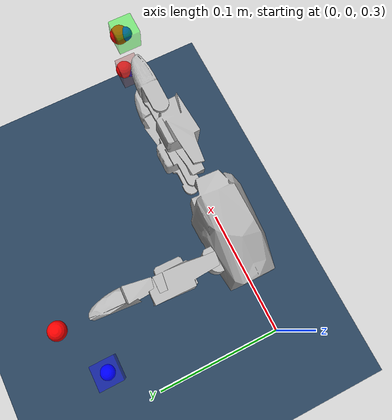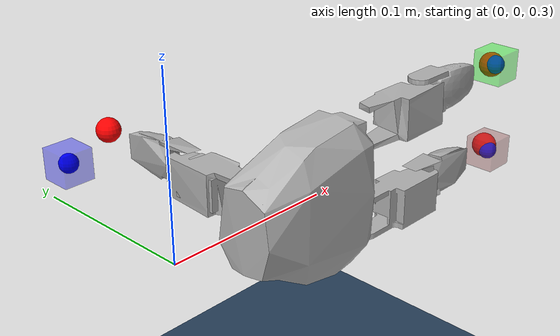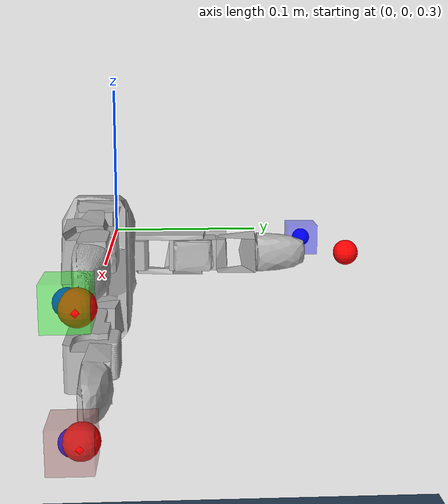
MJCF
<mujoco model="right dex3 hand scene">
  <include file="right_dex3.xml"/>
  <option gravity="0 0 0" />

  <statistic center="0 0 0.5" extent="2.0"/>

  <visual>
    <headlight diffuse="0.6 0.6 0.6" ambient="0.3 0.3 0.3" specular="0 0 0"/>
    <rgba haze="0.15 0.25 0.35 1"/>
    <global azimuth="-130" elevation="-20"/>
  </visual>

  <asset>
    <texture type="skybox" builtin="gradient" rgb1="0.3 0.5 0.7" rgb2="0 0 0" width="512" height="3072"/>
    <texture type="2d" name="groundplane" builtin="checker" mark="edge" rgb1="0.2 0.3 0.4" rgb2="0.1 0.2 0.3"
      markrgb="0.8 0.8 0.8" width="300" height="300"/>
    <material name="groundplane" texture="groundplane" texuniform="true" texrepeat="5 5" reflectance="0.2"/>
  </asset>

  <worldbody>
    <light pos="0 0 1.5" dir="0 0 -1" directional="true"/>
    <geom name="floor" size="0 0 0.05" type="plane" material="groundplane"/>

    <!-- multi-target -->
    <body name="rm" pos="0.27 0 0.27" quat="1 0 0 0" mocap="true">
      <geom type="box" size=".01 .01 .01" contype="0" conaffinity="0" rgba=".6 .3 .3 .4" />
      <site type="sphere" name="rm_site" size="0.006" rgba="0 0 1 1" group="1" />
    </body>
    <body name="ri" pos="0.27 0 0.33" quat="1 0 0 0" mocap="true">
      <geom type="box" size=".01 .01 .01" contype="0" conaffinity="0" rgba="0 1 0 .4" />
      <site type="sphere" name="ri_site" size="0.006" rgba="0 0 1 1" group="1" />
    </body>
    <body name="rt" pos="0.03 0.13 0.3" quat="1 0 0 0" mocap="true">
      <geom type="box" size=".01 .01 .01" contype="0" conaffinity="0" rgba="0 0 1 .4" />
      <site type="sphere" name="rt_site" size="0.006" rgba="0 0 1 1" group="1" />
    </body>
  </worldbody>
</mujoco>

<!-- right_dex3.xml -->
<mujoco model="right_dex3_hand">
  <compiler angle="radian" meshdir="./meshes/"/>

  <asset>
    <mesh name="right_hand_palm_link" file="right_hand_palm_link.STL"/>
    <mesh name="right_hand_thumb_0_link" file="right_hand_thumb_0_link.STL"/>
    <mesh name="right_hand_thumb_1_link" file="right_hand_thumb_1_link.STL"/>
    <mesh name="right_hand_thumb_2_link" file="right_hand_thumb_2_link.STL"/>
    <mesh name="right_hand_middle_0_link" file="right_hand_middle_0_link.STL"/>
    <mesh name="right_hand_middle_1_link" file="right_hand_middle_1_link.STL"/>
    <mesh name="right_hand_index_0_link" file="right_hand_index_0_link.STL"/>
    <mesh name="right_hand_index_1_link" file="right_hand_index_1_link.STL"/>
  </asset>

  <default>
    <default class="hand_motor">
      <joint damping="0.01" armature="0.01" frictionloss="0.1"/>
    </default>
  </default>

  <worldbody>
    <body name="hand_base" pos="0 0 0.3">
      <geom pos="0.0415 -0.003 0" quat="1 0 0 0" type="mesh" contype="0"
        conaffinity="0" group="1" density="0" rgba="0.7 0.7 0.7 1"
        mesh="right_hand_palm_link" />
      <geom pos="0.0415 -0.003 0" quat="1 0 0 0" type="mesh"
        rgba="0.7 0.7 0.7 1" mesh="right_hand_palm_link" />
      <body name="right_hand_thumb_0_link" pos="0.0695 -0.003 0">
        <inertial pos="-0.000354413 0.0132989 -0.000412362"
          quat="0.424842 0.567321 -0.591021 0.385163" mass="0.0803302"
          diaginertia="1.39245e-05 1.32309e-05 1.19138e-05" />
        <joint name="right_hand_thumb_0_joint" pos="0 0 0" axis="0 1 0"
          range="-1.0472 1.0472" actuatorfrcrange="-2.45 2.45" class="hand_motor" />
        <geom type="mesh" contype="0" conaffinity="0" group="1" density="0"
          rgba="0.7 0.7 0.7 1" mesh="right_hand_thumb_0_link" />
        <geom type="mesh" rgba="0.7 0.7 0.7 1" mesh="right_hand_thumb_0_link" />
        <body name="right_hand_thumb_1_link" pos="0 0.0246 0">
          <inertial pos="0.0036206 0.040444 0.000297711"
            quat="0.696371 0.699653 -0.125539 0.0989605" mass="0.0561963"
            diaginertia="1.23865e-05 1.2092e-05 5.00561e-06" />
          <joint name="right_hand_thumb_1_joint" pos="0 0 0" axis="0 0 1"
            range="-1.0472 0.724312" actuatorfrcrange="-0.7 0.7" class="hand_motor" />
          <geom type="mesh" contype="0" conaffinity="0" group="1" density="0"
            rgba="0.7 0.7 0.7 1" mesh="right_hand_thumb_1_link" />
          <geom size="0.01 0.015 0.01" pos="-0.001 0.032 0" type="box"
            rgba="0.7 0.7 0.7 1" />
          <body name="right_hand_thumb_2_link" pos="0.0055 0.0528 0">
            <inertial pos="-0.00081406 0.0345621 -0.000129799"
              quat="0.701976 0.711984 -0.0160342 -0.00721768" mass="0.0248731"
              diaginertia="8.60616e-06 7.69097e-06 1.98043e-06" />
            <joint name="right_hand_thumb_2_joint" pos="0 0 0" axis="0 0 1"
              range="-2.0944 0" actuatorfrcrange="-0.7 0.7" class="hand_motor" />
            <geom type="mesh" contype="0" conaffinity="0" group="1" density="0"
              rgba="0.7 0.7 0.7 1" mesh="right_hand_thumb_2_link" />
            <geom type="mesh" rgba="0.7 0.7 0.7 1"
              mesh="right_hand_thumb_2_link" />
              <body name="rt_body_site" pos="0 0.078 0">
                <site name="rt_index" size="0.008" rgba="1 0 0 1" group="1"/>
              </body>
          </body>
        </body>
      </body>
      <body name="right_hand_index_0_link" pos="0.1415 -0.0013 0.0285">
        <inertial pos="0.040444 0.0036206 -0.000287711"
          quat="0.562384 0.40596 0.583499 0.422433" mass="0.0561963"
          diaginertia="1.23865e-05 1.2092e-05 5.00561e-06" />
        <joint name="right_hand_index_0_joint" pos="0 0 0" axis="0 0 1"
          range="-0.191986 1.8326" actuatorfrcrange="-0.7 0.7" class="hand_motor" />
        <geom type="mesh" contype="0" conaffinity="0" group="1" density="0"
          rgba="0.7 0.7 0.7 1" mesh="right_hand_index_0_link" />
        <geom type="mesh" rgba="0.7 0.7 0.7 1" mesh="right_hand_index_0_link" />
        <body name="right_hand_index_1_link" pos="0.0528 0.0055 0">
          <inertial pos="0.0345621 -0.00081406 0.000129799"
            quat="0.491268 0.492111 0.514787 0.501475" mass="0.0248731"
            diaginertia="8.60616e-06 7.69097e-06 1.98043e-06" />
          <joint name="right_hand_index_1_joint" pos="0 0 0" axis="0 0 1"
            range="0 2.0944" actuatorfrcrange="-0.7 0.7" class="hand_motor" />
          <geom type="mesh" contype="0" conaffinity="0" group="1" density="0"
            rgba="0.7 0.7 0.7 1" mesh="right_hand_index_1_link" />
          <geom type="mesh" rgba="0.7 0.7 0.7 1" mesh="right_hand_index_1_link" />
          <body name="ri_body_site" pos="0.078 0 0">
            <site name="ri_index" size="0.008" rgba="1 0 0 1" group="1"/>
          </body>
        </body>
      </body>
      <body name="right_hand_middle_0_link" pos="0.1415 -0.0013 -0.0285">
        <inertial pos="0.040444 0.0036206 -0.000287711"
          quat="0.562384 0.40596 0.583499 0.422433" mass="0.0561963"
          diaginertia="1.23865e-05 1.2092e-05 5.00561e-06" />
        <joint name="right_hand_middle_0_joint" pos="0 0 0" axis="0 0 1"
          range="-0.191986 1.8326" actuatorfrcrange="-0.7 0.7" class="hand_motor" />
        <geom type="mesh" contype="0" conaffinity="0" group="1" density="0"
          rgba="0.7 0.7 0.7 1" mesh="right_hand_middle_0_link" />
        <geom type="mesh" rgba="0.7 0.7 0.7 1" mesh="right_hand_middle_0_link" />
        <body name="right_hand_middle_1_link" pos="0.0528 0.0055 0">
          <inertial pos="0.0345621 -0.00081406 0.000129799"
            quat="0.491268 0.492111 0.514787 0.501475" mass="0.0248731"
            diaginertia="8.60616e-06 7.69097e-06 1.98043e-06" />
          <joint name="right_hand_middle_1_joint" pos="0 0 0" axis="0 0 1"
            range="0 2.0944" actuatorfrcrange="-0.7 0.7" class="hand_motor" />
          <geom type="mesh" contype="0" conaffinity="0" group="1" density="0"
            rgba="0.7 0.7 0.7 1" mesh="right_hand_middle_1_link" />
          <geom type="mesh" rgba="0.7 0.7 0.7 1" mesh="right_hand_middle_1_link" />
          <body name="rm_body_site" pos="0.078 0 0">
            <site name="rm_index" size="0.008" rgba="1 0 0 1" group="1"/>
          </body>
        </body>
      </body>
    </body>
  </worldbody>

<actuator>
    <motor name="right_hand_thumb_0_motor" joint="right_hand_thumb_0_joint" ctrlrange="-5 5"/>
    <motor name="right_hand_thumb_1_motor" joint="right_hand_thumb_1_joint" ctrlrange="-5 5"/>
    <motor name="right_hand_thumb_2_motor" joint="right_hand_thumb_2_joint" ctrlrange="-5 5"/>
    <motor name="right_hand_middle_0_motor" joint="right_hand_middle_0_joint" ctrlrange="-5 5"/>
    <motor name="right_hand_middle_1_motor" joint="right_hand_middle_1_joint" ctrlrange="-5 5"/>
    <motor name="right_hand_index_0_motor" joint="right_hand_index_0_joint" ctrlrange="-5 5"/>
    <motor name="right_hand_index_1_motor" joint="right_hand_index_1_joint" ctrlrange="-5 5"/>
  </actuator>

</mujoco>
